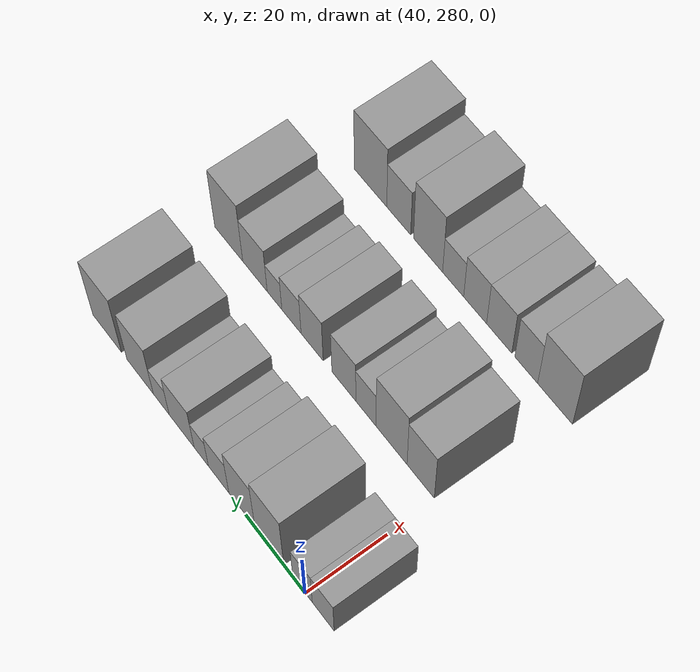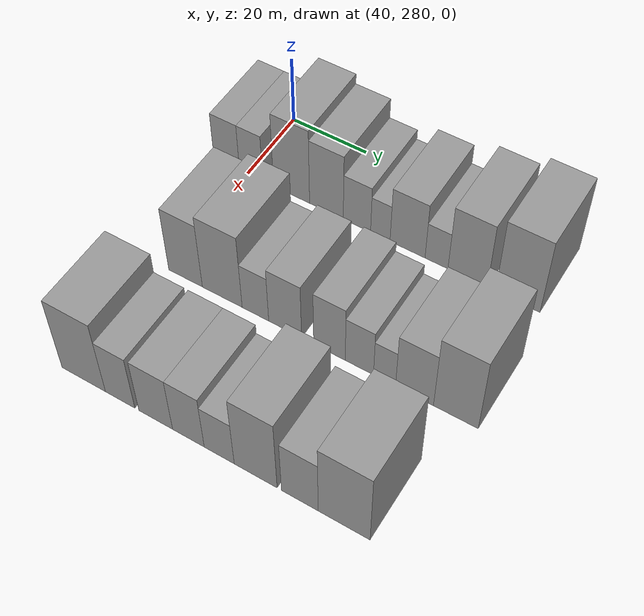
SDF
<sdf version="1.6">
 <world name="default">
  <model name="building_62">
   <static>1</static>
   <pose>50.0000 274.1442 0 0.000000 0.000000 0.000000</pose>
   <link name="link">
    <pose>0 0 7.50 0 0 0</pose>
    <collision name="collision"><geometry><box><size>20.0000 7.1492 15.0000</size></box></geometry></collision>
    <visual name="visual">
     <cast_shadows>0</cast_shadows>
     <geometry><box><size>20.0000 7.1492 15.0000</size></box></geometry>
     <material>
      <script>
       <uri>model://grey_wall/materials/scripts</uri>
       <uri>model://grey_wall/materials/textures</uri>
       <name>vrc/grey_wall</name>
      </script>
     </material>
    </visual>
   </link>
  </model>
  <model name="building_63">
   <static>1</static>
   <pose>50.0000 280.9306 0 0.000000 0.000000 0.000000</pose>
   <link name="link">
    <pose>0 0 7.50 0 0 0</pose>
    <collision name="collision"><geometry><box><size>20.0000 6.4235 15.0000</size></box></geometry></collision>
    <visual name="visual">
     <cast_shadows>0</cast_shadows>
     <geometry><box><size>20.0000 6.4235 15.0000</size></box></geometry>
     <material>
      <script>
       <uri>model://grey_wall/materials/scripts</uri>
       <uri>model://grey_wall/materials/textures</uri>
       <name>vrc/grey_wall</name>
      </script>
     </material>
    </visual>
   </link>
  </model>
  <model name="building_64">
   <static>1</static>
   <pose>50.0000 292.0159 0 0.000000 0.000000 0.000000</pose>
   <link name="link">
    <pose>0 0 12.00 0 0 0</pose>
    <collision name="collision"><geometry><box><size>20.0000 9.7471 24.0000</size></box></geometry></collision>
    <visual name="visual">
     <cast_shadows>0</cast_shadows>
     <geometry><box><size>20.0000 9.7471 24.0000</size></box></geometry>
     <material>
      <script>
       <uri>model://grey_wall/materials/scripts</uri>
       <uri>model://grey_wall/materials/textures</uri>
       <name>vrc/grey_wall</name>
      </script>
     </material>
    </visual>
   </link>
  </model>
  <model name="building_65">
   <static>1</static>
   <pose>50.0000 301.3566 0 0.000000 0.000000 0.000000</pose>
   <link name="link">
    <pose>0 0 10.50 0 0 0</pose>
    <collision name="collision"><geometry><box><size>20.0000 8.9344 21.0000</size></box></geometry></collision>
    <visual name="visual">
     <cast_shadows>0</cast_shadows>
     <geometry><box><size>20.0000 8.9344 21.0000</size></box></geometry>
     <material>
      <script>
       <uri>model://grey_wall/materials/scripts</uri>
       <uri>model://grey_wall/materials/textures</uri>
       <name>vrc/grey_wall</name>
      </script>
     </material>
    </visual>
   </link>
  </model>
  <model name="building_66">
   <static>1</static>
   <pose>50.0000 309.3874 0 0.000000 0.000000 0.000000</pose>
   <link name="link">
    <pose>0 0 7.50 0 0 0</pose>
    <collision name="collision"><geometry><box><size>20.0000 7.1272 15.0000</size></box></geometry></collision>
    <visual name="visual">
     <cast_shadows>0</cast_shadows>
     <geometry><box><size>20.0000 7.1272 15.0000</size></box></geometry>
     <material>
      <script>
       <uri>model://grey_wall/materials/scripts</uri>
       <uri>model://grey_wall/materials/textures</uri>
       <name>vrc/grey_wall</name>
      </script>
     </material>
    </visual>
   </link>
  </model>
  <model name="building_67">
   <static>1</static>
   <pose>50.0000 315.4517 0 0.000000 0.000000 0.000000</pose>
   <link name="link">
    <pose>0 0 6.00 0 0 0</pose>
    <collision name="collision"><geometry><box><size>20.0000 5.0014 12.0000</size></box></geometry></collision>
    <visual name="visual">
     <cast_shadows>0</cast_shadows>
     <geometry><box><size>20.0000 5.0014 12.0000</size></box></geometry>
     <material>
      <script>
       <uri>model://grey_wall/materials/scripts</uri>
       <uri>model://grey_wall/materials/textures</uri>
       <name>vrc/grey_wall</name>
      </script>
     </material>
    </visual>
   </link>
  </model>
  <model name="building_68">
   <static>1</static>
   <pose>50.0000 322.3887 0 0.000000 0.000000 0.000000</pose>
   <link name="link">
    <pose>0 0 9.00 0 0 0</pose>
    <collision name="collision"><geometry><box><size>20.0000 8.8725 18.0000</size></box></geometry></collision>
    <visual name="visual">
     <cast_shadows>0</cast_shadows>
     <geometry><box><size>20.0000 8.8725 18.0000</size></box></geometry>
     <material>
      <script>
       <uri>model://grey_wall/materials/scripts</uri>
       <uri>model://grey_wall/materials/textures</uri>
       <name>vrc/grey_wall</name>
      </script>
     </material>
    </visual>
   </link>
  </model>
  <model name="building_69">
   <static>1</static>
   <pose>50.0000 329.6839 0 0.000000 0.000000 0.000000</pose>
   <link name="link">
    <pose>0 0 6.00 0 0 0</pose>
    <collision name="collision"><geometry><box><size>20.0000 5.7180 12.0000</size></box></geometry></collision>
    <visual name="visual">
     <cast_shadows>0</cast_shadows>
     <geometry><box><size>20.0000 5.7180 12.0000</size></box></geometry>
     <material>
      <script>
       <uri>model://grey_wall/materials/scripts</uri>
       <uri>model://grey_wall/materials/textures</uri>
       <name>vrc/grey_wall</name>
      </script>
     </material>
    </visual>
   </link>
  </model>
  <model name="building_70">
   <static>1</static>
   <pose>50.0000 337.3587 0 0.000000 0.000000 0.000000</pose>
   <link name="link">
    <pose>0 0 10.50 0 0 0</pose>
    <collision name="collision"><geometry><box><size>20.0000 9.6316 21.0000</size></box></geometry></collision>
    <visual name="visual">
     <cast_shadows>0</cast_shadows>
     <geometry><box><size>20.0000 9.6316 21.0000</size></box></geometry>
     <material>
      <script>
       <uri>model://grey_wall/materials/scripts</uri>
       <uri>model://grey_wall/materials/textures</uri>
       <name>vrc/grey_wall</name>
      </script>
     </material>
    </visual>
   </link>
  </model>
  <model name="building_71">
   <static>1</static>
   <pose>50.0000 349.4940 0 0.000000 0.000000 0.000000</pose>
   <link name="link">
    <pose>0 0 12.00 0 0 0</pose>
    <collision name="collision"><geometry><box><size>20.0000 10.6389 24.0000</size></box></geometry></collision>
    <visual name="visual">
     <cast_shadows>0</cast_shadows>
     <geometry><box><size>20.0000 10.6389 24.0000</size></box></geometry>
     <material>
      <script>
       <uri>model://grey_wall/materials/scripts</uri>
       <uri>model://grey_wall/materials/textures</uri>
       <name>vrc/grey_wall</name>
      </script>
     </material>
    </visual>
   </link>
  </model>
  <model name="building_141">
   <static>1</static>
   <pose>82.0000 285.0195 0 0.000000 0.000000 0.000000</pose>
   <link name="link">
    <pose>0 0 10.50 0 0 0</pose>
    <collision name="collision"><geometry><box><size>20.0000 8.9238 21.0000</size></box></geometry></collision>
    <visual name="visual">
     <cast_shadows>0</cast_shadows>
     <geometry><box><size>20.0000 8.9238 21.0000</size></box></geometry>
     <material>
      <script>
       <uri>model://grey_wall/materials/scripts</uri>
       <uri>model://grey_wall/materials/textures</uri>
       <name>vrc/grey_wall</name>
      </script>
     </material>
    </visual>
   </link>
  </model>
  <model name="building_142">
   <static>1</static>
   <pose>82.0000 294.6560 0 0.000000 0.000000 0.000000</pose>
   <link name="link">
    <pose>0 0 12.00 0 0 0</pose>
    <collision name="collision"><geometry><box><size>20.0000 10.3492 24.0000</size></box></geometry></collision>
    <visual name="visual">
     <cast_shadows>0</cast_shadows>
     <geometry><box><size>20.0000 10.3492 24.0000</size></box></geometry>
     <material>
      <script>
       <uri>model://grey_wall/materials/scripts</uri>
       <uri>model://grey_wall/materials/textures</uri>
       <name>vrc/grey_wall</name>
      </script>
     </material>
    </visual>
   </link>
  </model>
  <model name="building_143">
   <static>1</static>
   <pose>82.0000 303.2127 0 0.000000 0.000000 0.000000</pose>
   <link name="link">
    <pose>0 0 7.50 0 0 0</pose>
    <collision name="collision"><geometry><box><size>20.0000 6.7642 15.0000</size></box></geometry></collision>
    <visual name="visual">
     <cast_shadows>0</cast_shadows>
     <geometry><box><size>20.0000 6.7642 15.0000</size></box></geometry>
     <material>
      <script>
       <uri>model://grey_wall/materials/scripts</uri>
       <uri>model://grey_wall/materials/textures</uri>
       <name>vrc/grey_wall</name>
      </script>
     </material>
    </visual>
   </link>
  </model>
  <model name="building_144">
   <static>1</static>
   <pose>82.0000 310.7174 0 0.000000 0.000000 0.000000</pose>
   <link name="link">
    <pose>0 0 9.00 0 0 0</pose>
    <collision name="collision"><geometry><box><size>20.0000 8.2454 18.0000</size></box></geometry></collision>
    <visual name="visual">
     <cast_shadows>0</cast_shadows>
     <geometry><box><size>20.0000 8.2454 18.0000</size></box></geometry>
     <material>
      <script>
       <uri>model://grey_wall/materials/scripts</uri>
       <uri>model://grey_wall/materials/textures</uri>
       <name>vrc/grey_wall</name>
      </script>
     </material>
    </visual>
   </link>
  </model>
  <model name="building_145">
   <static>1</static>
   <pose>82.0000 321.6884 0 0.000000 0.000000 0.000000</pose>
   <link name="link">
    <pose>0 0 9.00 0 0 0</pose>
    <collision name="collision"><geometry><box><size>20.0000 7.6966 18.0000</size></box></geometry></collision>
    <visual name="visual">
     <cast_shadows>0</cast_shadows>
     <geometry><box><size>20.0000 7.6966 18.0000</size></box></geometry>
     <material>
      <script>
       <uri>model://grey_wall/materials/scripts</uri>
       <uri>model://grey_wall/materials/textures</uri>
       <name>vrc/grey_wall</name>
      </script>
     </material>
    </visual>
   </link>
  </model>
  <model name="building_146">
   <static>1</static>
   <pose>82.0000 328.9381 0 0.000000 0.000000 0.000000</pose>
   <link name="link">
    <pose>0 0 7.50 0 0 0</pose>
    <collision name="collision"><geometry><box><size>20.0000 6.8027 15.0000</size></box></geometry></collision>
    <visual name="visual">
     <cast_shadows>0</cast_shadows>
     <geometry><box><size>20.0000 6.8027 15.0000</size></box></geometry>
     <material>
      <script>
       <uri>model://grey_wall/materials/scripts</uri>
       <uri>model://grey_wall/materials/textures</uri>
       <name>vrc/grey_wall</name>
      </script>
     </material>
    </visual>
   </link>
  </model>
  <model name="building_147">
   <static>1</static>
   <pose>82.0000 334.9516 0 0.000000 0.000000 0.000000</pose>
   <link name="link">
    <pose>0 0 6.00 0 0 0</pose>
    <collision name="collision"><geometry><box><size>20.0000 5.2245 12.0000</size></box></geometry></collision>
    <visual name="visual">
     <cast_shadows>0</cast_shadows>
     <geometry><box><size>20.0000 5.2245 12.0000</size></box></geometry>
     <material>
      <script>
       <uri>model://grey_wall/materials/scripts</uri>
       <uri>model://grey_wall/materials/textures</uri>
       <name>vrc/grey_wall</name>
      </script>
     </material>
    </visual>
   </link>
  </model>
  <model name="building_148">
   <static>1</static>
   <pose>82.0000 341.9794 0 0.000000 0.000000 0.000000</pose>
   <link name="link">
    <pose>0 0 9.00 0 0 0</pose>
    <collision name="collision"><geometry><box><size>20.0000 8.8310 18.0000</size></box></geometry></collision>
    <visual name="visual">
     <cast_shadows>0</cast_shadows>
     <geometry><box><size>20.0000 8.8310 18.0000</size></box></geometry>
     <material>
      <script>
       <uri>model://grey_wall/materials/scripts</uri>
       <uri>model://grey_wall/materials/textures</uri>
       <name>vrc/grey_wall</name>
      </script>
     </material>
    </visual>
   </link>
  </model>
  <model name="building_149">
   <static>1</static>
   <pose>82.0000 351.5084 0 0.000000 0.000000 0.000000</pose>
   <link name="link">
    <pose>0 0 12.00 0 0 0</pose>
    <collision name="collision"><geometry><box><size>20.0000 10.2272 24.0000</size></box></geometry></collision>
    <visual name="visual">
     <cast_shadows>0</cast_shadows>
     <geometry><box><size>20.0000 10.2272 24.0000</size></box></geometry>
     <material>
      <script>
       <uri>model://grey_wall/materials/scripts</uri>
       <uri>model://grey_wall/materials/textures</uri>
       <name>vrc/grey_wall</name>
      </script>
     </material>
    </visual>
   </link>
  </model>
  <model name="building_208">
   <static>1</static>
   <pose>114.0000 282.0244 0 0.000000 0.000000 0.000000</pose>
   <link name="link">
    <pose>0 0 12.00 0 0 0</pose>
    <collision name="collision"><geometry><box><size>20.0000 11.2314 24.0000</size></box></geometry></collision>
    <visual name="visual">
     <cast_shadows>0</cast_shadows>
     <geometry><box><size>20.0000 11.2314 24.0000</size></box></geometry>
     <material>
      <script>
       <uri>model://grey_wall/materials/scripts</uri>
       <uri>model://grey_wall/materials/textures</uri>
       <name>vrc/grey_wall</name>
      </script>
     </material>
    </visual>
   </link>
  </model>
  <model name="building_209">
   <static>1</static>
   <pose>114.0000 291.3651 0 0.000000 0.000000 0.000000</pose>
   <link name="link">
    <pose>0 0 9.00 0 0 0</pose>
    <collision name="collision"><geometry><box><size>20.0000 7.4501 18.0000</size></box></geometry></collision>
    <visual name="visual">
     <cast_shadows>0</cast_shadows>
     <geometry><box><size>20.0000 7.4501 18.0000</size></box></geometry>
     <material>
      <script>
       <uri>model://grey_wall/materials/scripts</uri>
       <uri>model://grey_wall/materials/textures</uri>
       <name>vrc/grey_wall</name>
      </script>
     </material>
    </visual>
   </link>
  </model>
  <model name="building_210">
   <static>1</static>
   <pose>114.0000 300.2670 0 0.000000 0.000000 0.000000</pose>
   <link name="link">
    <pose>0 0 9.00 0 0 0</pose>
    <collision name="collision"><geometry><box><size>20.0000 8.3537 18.0000</size></box></geometry></collision>
    <visual name="visual">
     <cast_shadows>0</cast_shadows>
     <geometry><box><size>20.0000 8.3537 18.0000</size></box></geometry>
     <material>
      <script>
       <uri>model://grey_wall/materials/scripts</uri>
       <uri>model://grey_wall/materials/textures</uri>
       <name>vrc/grey_wall</name>
      </script>
     </material>
    </visual>
   </link>
  </model>
  <model name="building_211">
   <static>1</static>
   <pose>114.0000 308.2950 0 0.000000 0.000000 0.000000</pose>
   <link name="link">
    <pose>0 0 9.00 0 0 0</pose>
    <collision name="collision"><geometry><box><size>20.0000 7.7021 18.0000</size></box></geometry></collision>
    <visual name="visual">
     <cast_shadows>0</cast_shadows>
     <geometry><box><size>20.0000 7.7021 18.0000</size></box></geometry>
     <material>
      <script>
       <uri>model://grey_wall/materials/scripts</uri>
       <uri>model://grey_wall/materials/textures</uri>
       <name>vrc/grey_wall</name>
      </script>
     </material>
    </visual>
   </link>
  </model>
  <model name="building_212">
   <static>1</static>
   <pose>114.0000 315.7260 0 0.000000 0.000000 0.000000</pose>
   <link name="link">
    <pose>0 0 7.50 0 0 0</pose>
    <collision name="collision"><geometry><box><size>20.0000 7.1600 15.0000</size></box></geometry></collision>
    <visual name="visual">
     <cast_shadows>0</cast_shadows>
     <geometry><box><size>20.0000 7.1600 15.0000</size></box></geometry>
     <material>
      <script>
       <uri>model://grey_wall/materials/scripts</uri>
       <uri>model://grey_wall/materials/textures</uri>
       <name>vrc/grey_wall</name>
      </script>
     </material>
    </visual>
   </link>
  </model>
  <model name="building_213">
   <static>1</static>
   <pose>114.0000 324.3169 0 0.000000 0.000000 0.000000</pose>
   <link name="link">
    <pose>0 0 12.00 0 0 0</pose>
    <collision name="collision"><geometry><box><size>20.0000 10.0218 24.0000</size></box></geometry></collision>
    <visual name="visual">
     <cast_shadows>0</cast_shadows>
     <geometry><box><size>20.0000 10.0218 24.0000</size></box></geometry>
     <material>
      <script>
       <uri>model://grey_wall/materials/scripts</uri>
       <uri>model://grey_wall/materials/textures</uri>
       <name>vrc/grey_wall</name>
      </script>
     </material>
    </visual>
   </link>
  </model>
  <model name="building_214">
   <static>1</static>
   <pose>114.0000 334.5072 0 0.000000 0.000000 0.000000</pose>
   <link name="link">
    <pose>0 0 9.00 0 0 0</pose>
    <collision name="collision"><geometry><box><size>20.0000 8.3588 18.0000</size></box></geometry></collision>
    <visual name="visual">
     <cast_shadows>0</cast_shadows>
     <geometry><box><size>20.0000 8.3588 18.0000</size></box></geometry>
     <material>
      <script>
       <uri>model://grey_wall/materials/scripts</uri>
       <uri>model://grey_wall/materials/textures</uri>
       <name>vrc/grey_wall</name>
      </script>
     </material>
    </visual>
   </link>
  </model>
  <model name="building_215">
   <static>1</static>
   <pose>114.0000 344.4591 0 0.000000 0.000000 0.000000</pose>
   <link name="link">
    <pose>0 0 12.00 0 0 0</pose>
    <collision name="collision"><geometry><box><size>20.0000 11.5451 24.0000</size></box></geometry></collision>
    <visual name="visual">
     <cast_shadows>0</cast_shadows>
     <geometry><box><size>20.0000 11.5451 24.0000</size></box></geometry>
     <material>
      <script>
       <uri>model://grey_wall/materials/scripts</uri>
       <uri>model://grey_wall/materials/textures</uri>
       <name>vrc/grey_wall</name>
      </script>
     </material>
    </visual>
   </link>
  </model>
 </world>
</sdf>
